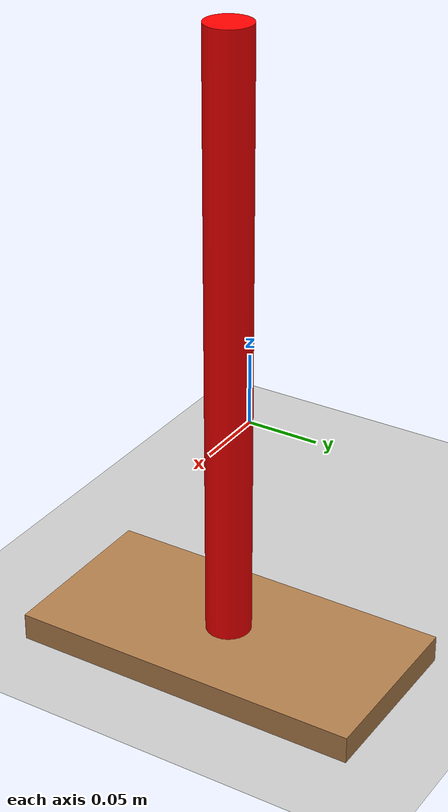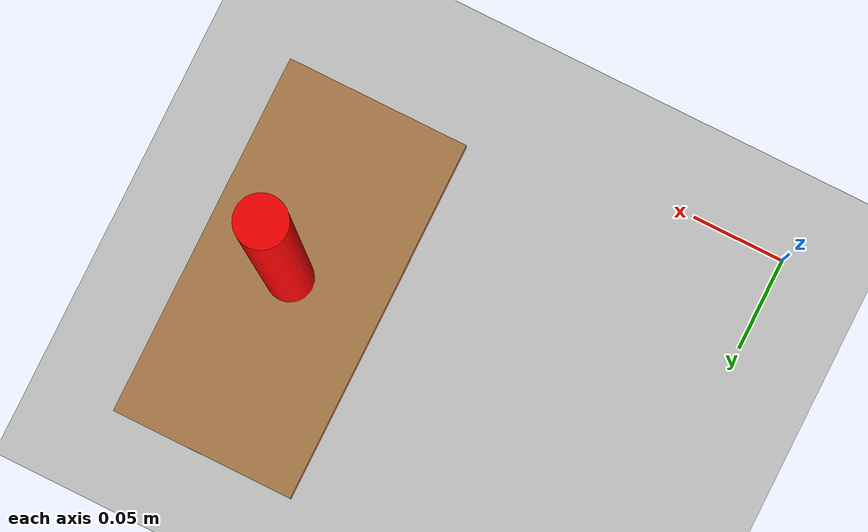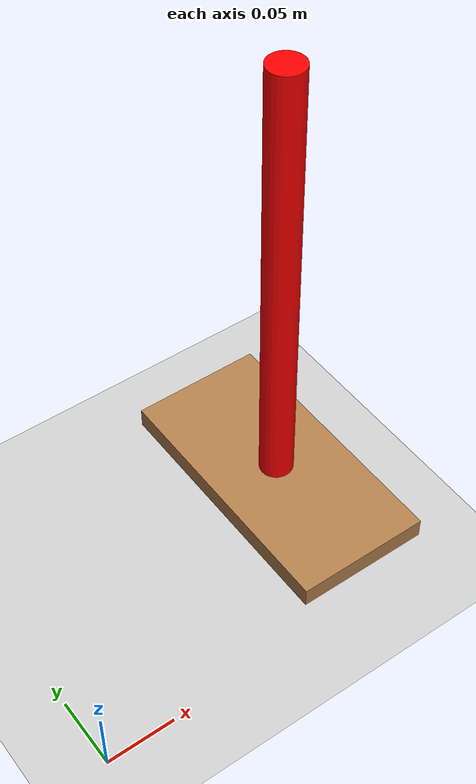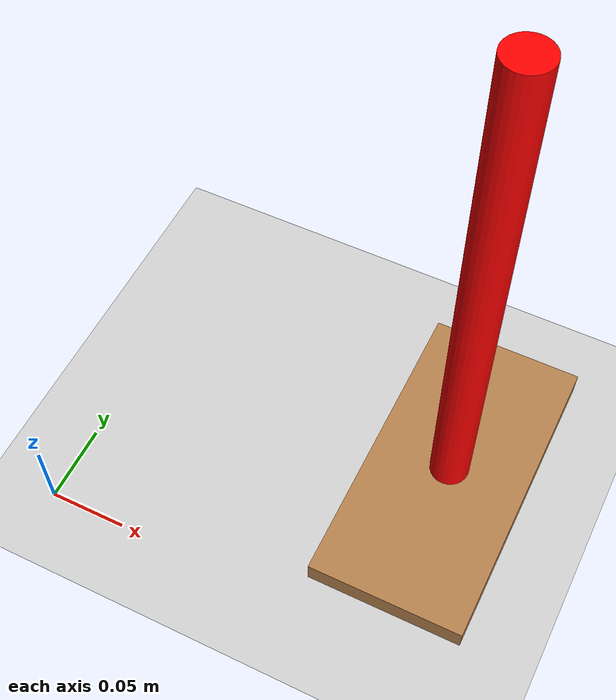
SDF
<?xml version="1.0" ?>

<sdf version="1.7">
  <world name="default">

    <!-- Plugin for simulating physics -->
    <plugin
      filename="gz-sim-physics-system"
      name="gz::sim::systems::Physics">
    </plugin>

    <!-- Plugin for handling user commands -->
    <plugin
      filename="gz-sim-user-commands-system"
      name="gz::sim::systems::UserCommands">
    </plugin>

    <!-- Plugin for broadcasting scene updates -->
    <plugin
      filename="gz-sim-scene-broadcaster-system"
      name="gz::sim::systems::SceneBroadcaster">
    </plugin>

    <!-- Plugin for sensor handling -->
    <plugin
      filename="gz-sim-sensors-system"
      name="gz::sim::systems::Sensors">
      <render_engine>ogre2</render_engine>
    </plugin>

    <!-- To add realistic gravity, do: 0.0 0.0 -9.8, otherwise do 0.0 0.0 0.0 -->
    <gravity>0.0 0.0 -9.8</gravity>

    <!-- Include a model of the Sun from an external URI -->
    <include>
      <uri>
        https://fuel.gazebosim.org/1.0/OpenRobotics/models/Sun
      </uri>
    </include>

    <!-- Include a model of the Ground Plane from an external URI -->
    <include>
      <uri>
        https://fuel.gazebosim.org/1.0/OpenRobotics/models/Ground Plane
      </uri>
    </include>

    <!-- Include the table model -->
    <include>
      <uri>model://hello_mtc_with_perception_table</uri>
      <name>hello_mtc_with_perception_table</name>
      <pose>0.22 0.12 0.0 0 0 0</pose>
    </include>

    <!-- Include the cylinder model -->
    <include>
      <uri>model://hello_mtc_with_perception_cylinder</uri>
      <name>hello_mtc_with_perception_cylinder</name>
      <pose>0.22 0.12 0.175 0 0 0</pose>
    </include>

    <!-- Define scene properties -->
    <scene>
      <shadows>false</shadows>
    </scene>

  </world>
</sdf>

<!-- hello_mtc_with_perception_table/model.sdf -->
<sdf version="1.6">
  <model name="hello_mtc_with_perception_table">
    <static>true</static>
    <link name="link">
      <collision name="collision">
        <geometry>
          <box>
            <size>0.10 0.20 0.03</size>
          </box>
        </geometry>
      </collision>
      <visual name="visual">
        <geometry>
          <box>
            <size>0.10 0.20 0.03</size>
          </box>
        </geometry>
        <material>
          <ambient>0.7 0.5 0.3 1</ambient>
          <diffuse>0.7 0.5 0.3 1</diffuse>
          <specular>0.1 0.1 0.1 1</specular>
        </material>
      </visual>
    </link>
  </model>
</sdf>

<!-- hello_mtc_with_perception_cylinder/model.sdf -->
<sdf version="1.6">
  <model name="hello_mtc_with_perception_cylinder">
    <static>false</static>
    <link name="link">
      <inertial>
        <mass>0.050</mass>
        <inertia>
          <ixx>0.000000204</ixx>
          <ixy>0</ixy>
          <ixz>0</ixz>
          <iyy>0.000000204</iyy>
          <iyz>0</iyz>
          <izz>0.000000039</izz>
        </inertia>
      </inertial>
      <collision name="collision">
        <geometry>
          <cylinder>
            <radius>0.015</radius>
            <length>0.35</length>
          </cylinder>
        </geometry>
        <surface>
          <friction>
            <ode>
              <mu>0.8</mu>
              <mu2>0.8</mu2>
              <fdir1>0 0 1</fdir1>
              <slip1>0.001</slip1>
              <slip2>0.001</slip2>
            </ode>
            <torsional>
              <coefficient>0.1</coefficient>
              <surface_radius>0.015</surface_radius>
              <use_patch_radius>true</use_patch_radius>
            </torsional>
          </friction>
          <contact>
            <ode>
              <kp>1e5</kp>
              <kd>10</kd>
              <max_vel>0.1</max_vel>
              <min_depth>0.001</min_depth>
              <soft_cfm>0.01</soft_cfm>
              <soft_erp>0.2</soft_erp>
            </ode>
          </contact>
          <bounce>
            <restitution_coefficient>0.2</restitution_coefficient>
            <threshold>0.01</threshold>
          </bounce>
        </surface>
      </collision>
      <visual name="visual">
        <geometry>
          <cylinder>
            <radius>0.0125</radius>
            <length>0.35</length>
          </cylinder>
        </geometry>
        <material>
          <ambient>1.0 0.0 0.0 1</ambient>
          <diffuse>1.0 0.0 0.0 1</diffuse>
          <specular>0.5 0.5 0.5 1</specular>
          <emissive>0.1 0 0 1</emissive>
        </material>
      </visual>
    </link>
  </model>
</sdf>
